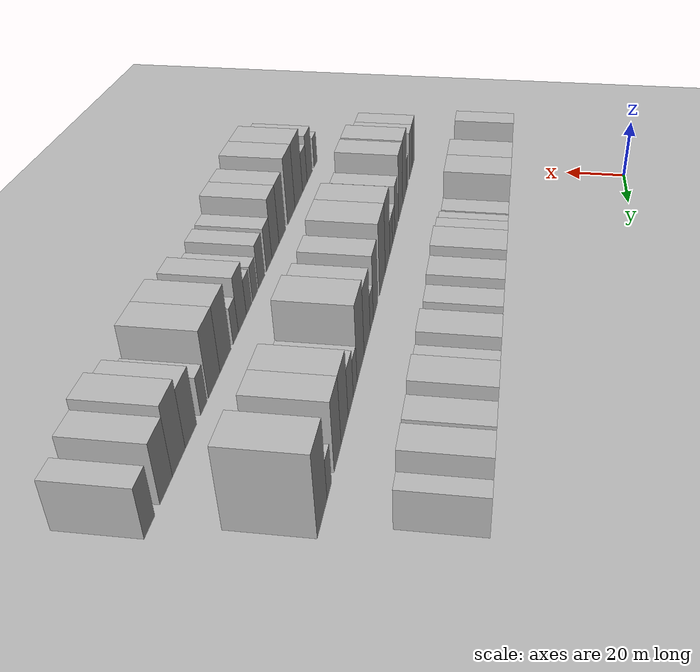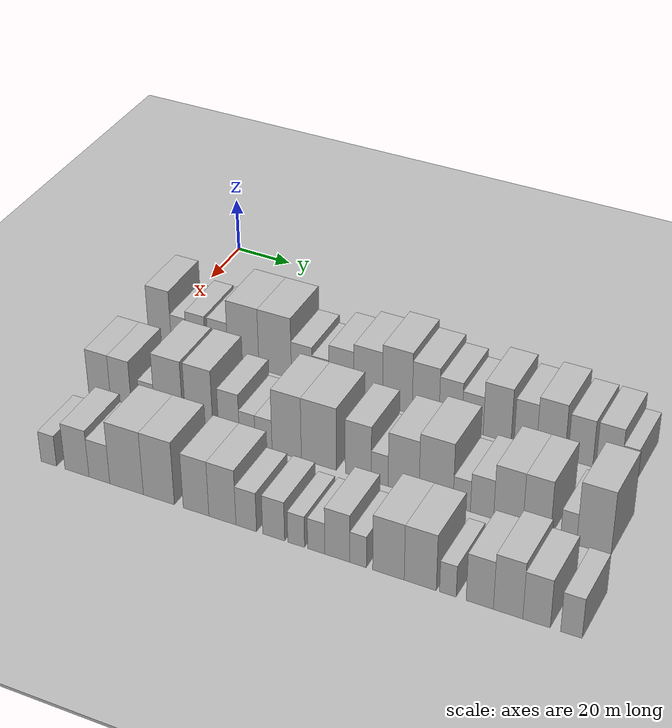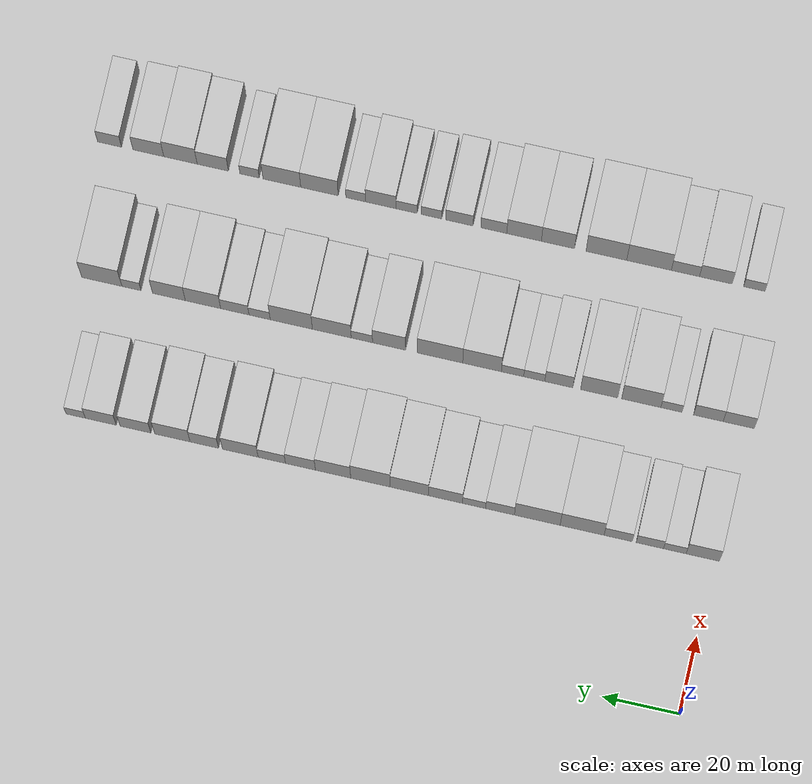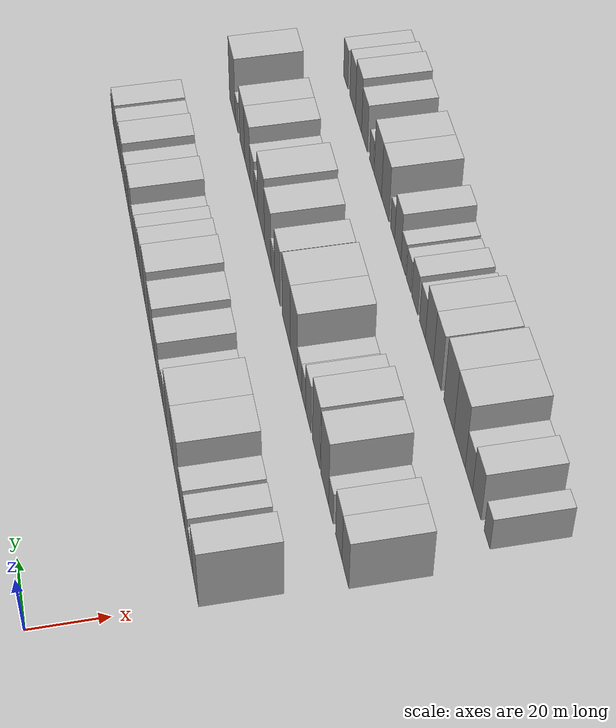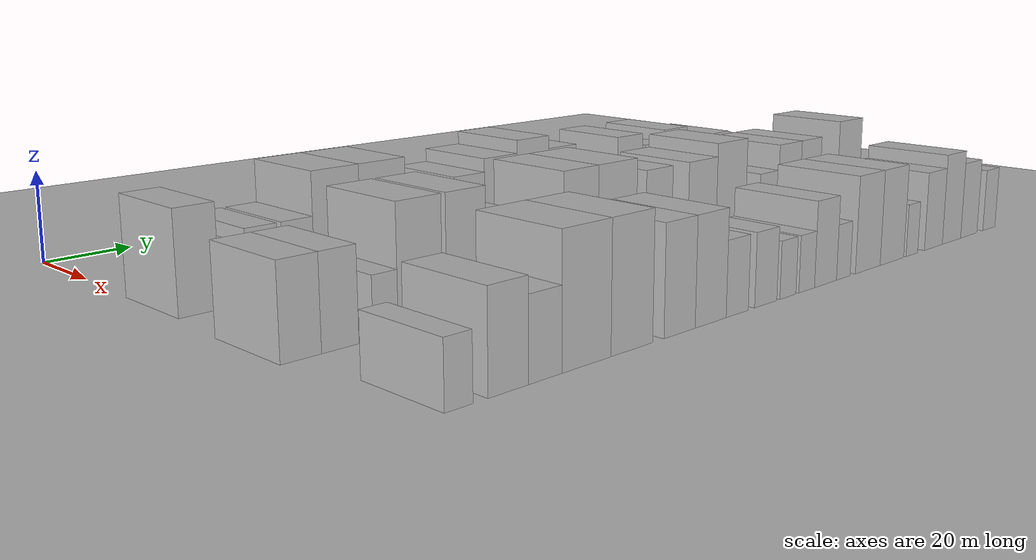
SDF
<sdf version="1.6">
 <world name="default">
  <include><name>ground_plane_1</name><uri>model://HANNAS_ground_plane</uri></include>
  <include>
   <name>ground_plane_2</name>
   <uri>model://HANNAS_ground_plane</uri>
   <pose>100 0 0  0 0 0</pose>
  </include>
  <model name="building_42">
   <static>1</static>
   <pose>50.0000 2.9636 0 0.000000 0.000000 0.000000</pose>
   <link name="link">
    <pose>0 0 10.50 0 0 0</pose>
    <collision name="collision"><geometry><box><size>20.0000 8.5834 21.0000</size></box></geometry></collision>
    <visual name="visual">
     <cast_shadows>0</cast_shadows>
     <geometry><box><size>20.0000 8.5834 21.0000</size></box></geometry>
     <material>
      <script>
       <uri>model://HANNAS_wall/materials/scripts</uri>
       <uri>model://HANNAS_wall/materials/textures</uri>
       <name>vrc/HANNAS_wall</name>
      </script>
     </material>
    </visual>
   </link>
  </model>
  <model name="building_43">
   <static>1</static>
   <pose>50.0000 10.1613 0 0.000000 0.000000 0.000000</pose>
   <link name="link">
    <pose>0 0 6.00 0 0 0</pose>
    <collision name="collision"><geometry><box><size>20.0000 5.8121 12.0000</size></box></geometry></collision>
    <visual name="visual">
     <cast_shadows>0</cast_shadows>
     <geometry><box><size>20.0000 5.8121 12.0000</size></box></geometry>
     <material>
      <script>
       <uri>model://HANNAS_wall/materials/scripts</uri>
       <uri>model://HANNAS_wall/materials/textures</uri>
       <name>vrc/HANNAS_wall</name>
      </script>
     </material>
    </visual>
   </link>
  </model>
  <model name="building_44">
   <static>1</static>
   <pose>50.0000 16.6124 0 0.000000 0.000000 0.000000</pose>
   <link name="link">
    <pose>0 0 7.50 0 0 0</pose>
    <collision name="collision"><geometry><box><size>20.0000 7.0900 15.0000</size></box></geometry></collision>
    <visual name="visual">
     <cast_shadows>0</cast_shadows>
     <geometry><box><size>20.0000 7.0900 15.0000</size></box></geometry>
     <material>
      <script>
       <uri>model://HANNAS_wall/materials/scripts</uri>
       <uri>model://HANNAS_wall/materials/textures</uri>
       <name>vrc/HANNAS_wall</name>
      </script>
     </material>
    </visual>
   </link>
  </model>
  <model name="building_45">
   <static>1</static>
   <pose>50.0000 24.7984 0 0.000000 0.000000 0.000000</pose>
   <link name="link">
    <pose>0 0 7.50 0 0 0</pose>
    <collision name="collision"><geometry><box><size>20.0000 7.2821 15.0000</size></box></geometry></collision>
    <visual name="visual">
     <cast_shadows>0</cast_shadows>
     <geometry><box><size>20.0000 7.2821 15.0000</size></box></geometry>
     <material>
      <script>
       <uri>model://HANNAS_wall/materials/scripts</uri>
       <uri>model://HANNAS_wall/materials/textures</uri>
       <name>vrc/HANNAS_wall</name>
      </script>
     </material>
    </visual>
   </link>
  </model>
  <model name="building_46">
   <static>1</static>
   <pose>50.0000 34.1373 0 0.000000 0.000000 0.000000</pose>
   <link name="link">
    <pose>0 0 12.00 0 0 0</pose>
    <collision name="collision"><geometry><box><size>20.0000 11.3957 24.0000</size></box></geometry></collision>
    <visual name="visual">
     <cast_shadows>0</cast_shadows>
     <geometry><box><size>20.0000 11.3957 24.0000</size></box></geometry>
     <material>
      <script>
       <uri>model://HANNAS_wall/materials/scripts</uri>
       <uri>model://HANNAS_wall/materials/textures</uri>
       <name>vrc/HANNAS_wall</name>
      </script>
     </material>
    </visual>
   </link>
  </model>
  <model name="building_47">
   <static>1</static>
   <pose>50.0000 45.7500 0 0.000000 0.000000 0.000000</pose>
   <link name="link">
    <pose>0 0 12.00 0 0 0</pose>
    <collision name="collision"><geometry><box><size>20.0000 11.8298 24.0000</size></box></geometry></collision>
    <visual name="visual">
     <cast_shadows>0</cast_shadows>
     <geometry><box><size>20.0000 11.8298 24.0000</size></box></geometry>
     <material>
      <script>
       <uri>model://HANNAS_wall/materials/scripts</uri>
       <uri>model://HANNAS_wall/materials/textures</uri>
       <name>vrc/HANNAS_wall</name>
      </script>
     </material>
    </visual>
   </link>
  </model>
  <model name="building_48">
   <static>1</static>
   <pose>50.0000 55.3839 0 0.000000 0.000000 0.000000</pose>
   <link name="link">
    <pose>0 0 7.50 0 0 0</pose>
    <collision name="collision"><geometry><box><size>20.0000 7.4379 15.0000</size></box></geometry></collision>
    <visual name="visual">
     <cast_shadows>0</cast_shadows>
     <geometry><box><size>20.0000 7.4379 15.0000</size></box></geometry>
     <material>
      <script>
       <uri>model://HANNAS_wall/materials/scripts</uri>
       <uri>model://HANNAS_wall/materials/textures</uri>
       <name>vrc/HANNAS_wall</name>
      </script>
     </material>
    </visual>
   </link>
  </model>
  <model name="building_49">
   <static>1</static>
   <pose>50.0000 62.1015 0 0.000000 0.000000 0.000000</pose>
   <link name="link">
    <pose>0 0 6.00 0 0 0</pose>
    <collision name="collision"><geometry><box><size>20.0000 5.9973 12.0000</size></box></geometry></collision>
    <visual name="visual">
     <cast_shadows>0</cast_shadows>
     <geometry><box><size>20.0000 5.9973 12.0000</size></box></geometry>
     <material>
      <script>
       <uri>model://HANNAS_wall/materials/scripts</uri>
       <uri>model://HANNAS_wall/materials/textures</uri>
       <name>vrc/HANNAS_wall</name>
      </script>
     </material>
    </visual>
   </link>
  </model>
  <model name="building_50">
   <static>1</static>
   <pose>50.0000 69.4958 0 0.000000 0.000000 0.000000</pose>
   <link name="link">
    <pose>0 0 9.00 0 0 0</pose>
    <collision name="collision"><geometry><box><size>20.0000 8.7914 18.0000</size></box></geometry></collision>
    <visual name="visual">
     <cast_shadows>0</cast_shadows>
     <geometry><box><size>20.0000 8.7914 18.0000</size></box></geometry>
     <material>
      <script>
       <uri>model://HANNAS_wall/materials/scripts</uri>
       <uri>model://HANNAS_wall/materials/textures</uri>
       <name>vrc/HANNAS_wall</name>
      </script>
     </material>
    </visual>
   </link>
  </model>
  <model name="building_51">
   <static>1</static>
   <pose>50.0000 78.8702 0 0.000000 0.000000 0.000000</pose>
   <link name="link">
    <pose>0 0 10.50 0 0 0</pose>
    <collision name="collision"><geometry><box><size>20.0000 9.9574 21.0000</size></box></geometry></collision>
    <visual name="visual">
     <cast_shadows>0</cast_shadows>
     <geometry><box><size>20.0000 9.9574 21.0000</size></box></geometry>
     <material>
      <script>
       <uri>model://HANNAS_wall/materials/scripts</uri>
       <uri>model://HANNAS_wall/materials/textures</uri>
       <name>vrc/HANNAS_wall</name>
      </script>
     </material>
    </visual>
   </link>
  </model>
  <model name="building_52">
   <static>1</static>
   <pose>50.0000 88.9703 0 0.000000 0.000000 0.000000</pose>
   <link name="link">
    <pose>0 0 12.00 0 0 0</pose>
    <collision name="collision"><geometry><box><size>20.0000 10.2429 24.0000</size></box></geometry></collision>
    <visual name="visual">
     <cast_shadows>0</cast_shadows>
     <geometry><box><size>20.0000 10.2429 24.0000</size></box></geometry>
     <material>
      <script>
       <uri>model://HANNAS_wall/materials/scripts</uri>
       <uri>model://HANNAS_wall/materials/textures</uri>
       <name>vrc/HANNAS_wall</name>
      </script>
     </material>
    </visual>
   </link>
  </model>
  <model name="building_53">
   <static>1</static>
   <pose>50.0000 98.6666 0 0.000000 0.000000 0.000000</pose>
   <link name="link">
    <pose>0 0 10.50 0 0 0</pose>
    <collision name="collision"><geometry><box><size>20.0000 9.1496 21.0000</size></box></geometry></collision>
    <visual name="visual">
     <cast_shadows>0</cast_shadows>
     <geometry><box><size>20.0000 9.1496 21.0000</size></box></geometry>
     <material>
      <script>
       <uri>model://HANNAS_wall/materials/scripts</uri>
       <uri>model://HANNAS_wall/materials/textures</uri>
       <name>vrc/HANNAS_wall</name>
      </script>
     </material>
    </visual>
   </link>
  </model>
  <model name="building_54">
   <static>1</static>
   <pose>50.0000 107.1267 0 0.000000 0.000000 0.000000</pose>
   <link name="link">
    <pose>0 0 9.00 0 0 0</pose>
    <collision name="collision"><geometry><box><size>20.0000 7.7707 18.0000</size></box></geometry></collision>
    <visual name="visual">
     <cast_shadows>0</cast_shadows>
     <geometry><box><size>20.0000 7.7707 18.0000</size></box></geometry>
     <material>
      <script>
       <uri>model://HANNAS_wall/materials/scripts</uri>
       <uri>model://HANNAS_wall/materials/textures</uri>
       <name>vrc/HANNAS_wall</name>
      </script>
     </material>
    </visual>
   </link>
  </model>
  <model name="building_55">
   <static>1</static>
   <pose>50.0000 114.5662 0 0.000000 0.000000 0.000000</pose>
   <link name="link">
    <pose>0 0 7.50 0 0 0</pose>
    <collision name="collision"><geometry><box><size>20.0000 7.1082 15.0000</size></box></geometry></collision>
    <visual name="visual">
     <cast_shadows>0</cast_shadows>
     <geometry><box><size>20.0000 7.1082 15.0000</size></box></geometry>
     <material>
      <script>
       <uri>model://HANNAS_wall/materials/scripts</uri>
       <uri>model://HANNAS_wall/materials/textures</uri>
       <name>vrc/HANNAS_wall</name>
      </script>
     </material>
    </visual>
   </link>
  </model>
  <model name="building_56">
   <static>1</static>
   <pose>50.0000 122.7593 0 0.000000 0.000000 0.000000</pose>
   <link name="link">
    <pose>0 0 10.50 0 0 0</pose>
    <collision name="collision"><geometry><box><size>20.0000 9.2781 21.0000</size></box></geometry></collision>
    <visual name="visual">
     <cast_shadows>0</cast_shadows>
     <geometry><box><size>20.0000 9.2781 21.0000</size></box></geometry>
     <material>
      <script>
       <uri>model://HANNAS_wall/materials/scripts</uri>
       <uri>model://HANNAS_wall/materials/textures</uri>
       <name>vrc/HANNAS_wall</name>
      </script>
     </material>
    </visual>
   </link>
  </model>
  <model name="building_57">
   <static>1</static>
   <pose>50.0000 132.0921 0 0.000000 0.000000 0.000000</pose>
   <link name="link">
    <pose>0 0 9.00 0 0 0</pose>
    <collision name="collision"><geometry><box><size>20.0000 7.3874 18.0000</size></box></geometry></collision>
    <visual name="visual">
     <cast_shadows>0</cast_shadows>
     <geometry><box><size>20.0000 7.3874 18.0000</size></box></geometry>
     <material>
      <script>
       <uri>model://HANNAS_wall/materials/scripts</uri>
       <uri>model://HANNAS_wall/materials/textures</uri>
       <name>vrc/HANNAS_wall</name>
      </script>
     </material>
    </visual>
   </link>
  </model>
  <model name="building_58">
   <static>1</static>
   <pose>50.0000 140.3785 0 0.000000 0.000000 0.000000</pose>
   <link name="link">
    <pose>0 0 10.50 0 0 0</pose>
    <collision name="collision"><geometry><box><size>20.0000 9.1855 21.0000</size></box></geometry></collision>
    <visual name="visual">
     <cast_shadows>0</cast_shadows>
     <geometry><box><size>20.0000 9.1855 21.0000</size></box></geometry>
     <material>
      <script>
       <uri>model://HANNAS_wall/materials/scripts</uri>
       <uri>model://HANNAS_wall/materials/textures</uri>
       <name>vrc/HANNAS_wall</name>
      </script>
     </material>
    </visual>
   </link>
  </model>
  <model name="building_59">
   <static>1</static>
   <pose>50.0000 149.9668 0 0.000000 0.000000 0.000000</pose>
   <link name="link">
    <pose>0 0 9.00 0 0 0</pose>
    <collision name="collision"><geometry><box><size>20.0000 7.9911 18.0000</size></box></geometry></collision>
    <visual name="visual">
     <cast_shadows>0</cast_shadows>
     <geometry><box><size>20.0000 7.9911 18.0000</size></box></geometry>
     <material>
      <script>
       <uri>model://HANNAS_wall/materials/scripts</uri>
       <uri>model://HANNAS_wall/materials/textures</uri>
       <name>vrc/HANNAS_wall</name>
      </script>
     </material>
    </visual>
   </link>
  </model>
  <model name="building_60">
   <static>1</static>
   <pose>50.0000 158.9801 0 0.000000 0.000000 0.000000</pose>
   <link name="link">
    <pose>0 0 9.00 0 0 0</pose>
    <collision name="collision"><geometry><box><size>20.0000 8.0355 18.0000</size></box></geometry></collision>
    <visual name="visual">
     <cast_shadows>0</cast_shadows>
     <geometry><box><size>20.0000 8.0355 18.0000</size></box></geometry>
     <material>
      <script>
       <uri>model://HANNAS_wall/materials/scripts</uri>
       <uri>model://HANNAS_wall/materials/textures</uri>
       <name>vrc/HANNAS_wall</name>
      </script>
     </material>
    </visual>
   </link>
  </model>
  <model name="building_61">
   <static>1</static>
   <pose>50.0000 165.5168 0 0.000000 0.000000 0.000000</pose>
   <link name="link">
    <pose>0 0 6.00 0 0 0</pose>
    <collision name="collision"><geometry><box><size>20.0000 5.0380 12.0000</size></box></geometry></collision>
    <visual name="visual">
     <cast_shadows>0</cast_shadows>
     <geometry><box><size>20.0000 5.0380 12.0000</size></box></geometry>
     <material>
      <script>
       <uri>model://HANNAS_wall/materials/scripts</uri>
       <uri>model://HANNAS_wall/materials/textures</uri>
       <name>vrc/HANNAS_wall</name>
      </script>
     </material>
    </visual>
   </link>
  </model>
  <model name="building_125">
   <static>1</static>
   <pose>85.0000 1.3332 0 0.000000 0.000000 0.000000</pose>
   <link name="link">
    <pose>0 0 9.00 0 0 0</pose>
    <collision name="collision"><geometry><box><size>20.0000 8.0716 18.0000</size></box></geometry></collision>
    <visual name="visual">
     <cast_shadows>0</cast_shadows>
     <geometry><box><size>20.0000 8.0716 18.0000</size></box></geometry>
     <material>
      <script>
       <uri>model://HANNAS_wall/materials/scripts</uri>
       <uri>model://HANNAS_wall/materials/textures</uri>
       <name>vrc/HANNAS_wall</name>
      </script>
     </material>
    </visual>
   </link>
  </model>
  <model name="building_126">
   <static>1</static>
   <pose>85.0000 9.1990 0 0.000000 0.000000 0.000000</pose>
   <link name="link">
    <pose>0 0 9.00 0 0 0</pose>
    <collision name="collision"><geometry><box><size>20.0000 7.6599 18.0000</size></box></geometry></collision>
    <visual name="visual">
     <cast_shadows>0</cast_shadows>
     <geometry><box><size>20.0000 7.6599 18.0000</size></box></geometry>
     <material>
      <script>
       <uri>model://HANNAS_wall/materials/scripts</uri>
       <uri>model://HANNAS_wall/materials/textures</uri>
       <name>vrc/HANNAS_wall</name>
      </script>
     </material>
    </visual>
   </link>
  </model>
  <model name="building_127">
   <static>1</static>
   <pose>85.0000 18.7792 0 0.000000 0.000000 0.000000</pose>
   <link name="link">
    <pose>0 0 6.00 0 0 0</pose>
    <collision name="collision"><geometry><box><size>20.0000 5.5005 12.0000</size></box></geometry></collision>
    <visual name="visual">
     <cast_shadows>0</cast_shadows>
     <geometry><box><size>20.0000 5.5005 12.0000</size></box></geometry>
     <material>
      <script>
       <uri>model://HANNAS_wall/materials/scripts</uri>
       <uri>model://HANNAS_wall/materials/textures</uri>
       <name>vrc/HANNAS_wall</name>
      </script>
     </material>
    </visual>
   </link>
  </model>
  <model name="building_128">
   <static>1</static>
   <pose>85.0000 26.6254 0 0.000000 0.000000 0.000000</pose>
   <link name="link">
    <pose>0 0 12.00 0 0 0</pose>
    <collision name="collision"><geometry><box><size>20.0000 10.1918 24.0000</size></box></geometry></collision>
    <visual name="visual">
     <cast_shadows>0</cast_shadows>
     <geometry><box><size>20.0000 10.1918 24.0000</size></box></geometry>
     <material>
      <script>
       <uri>model://HANNAS_wall/materials/scripts</uri>
       <uri>model://HANNAS_wall/materials/textures</uri>
       <name>vrc/HANNAS_wall</name>
      </script>
     </material>
    </visual>
   </link>
  </model>
  <model name="building_129">
   <static>1</static>
   <pose>85.0000 37.5442 0 0.000000 0.000000 0.000000</pose>
   <link name="link">
    <pose>0 0 12.00 0 0 0</pose>
    <collision name="collision"><geometry><box><size>20.0000 9.6459 24.0000</size></box></geometry></collision>
    <visual name="visual">
     <cast_shadows>0</cast_shadows>
     <geometry><box><size>20.0000 9.6459 24.0000</size></box></geometry>
     <material>
      <script>
       <uri>model://HANNAS_wall/materials/scripts</uri>
       <uri>model://HANNAS_wall/materials/textures</uri>
       <name>vrc/HANNAS_wall</name>
      </script>
     </material>
    </visual>
   </link>
  </model>
  <model name="building_130">
   <static>1</static>
   <pose>85.0000 48.0102 0 0.000000 0.000000 0.000000</pose>
   <link name="link">
    <pose>0 0 9.00 0 0 0</pose>
    <collision name="collision"><geometry><box><size>20.0000 7.2861 18.0000</size></box></geometry></collision>
    <visual name="visual">
     <cast_shadows>0</cast_shadows>
     <geometry><box><size>20.0000 7.2861 18.0000</size></box></geometry>
     <material>
      <script>
       <uri>model://HANNAS_wall/materials/scripts</uri>
       <uri>model://HANNAS_wall/materials/textures</uri>
       <name>vrc/HANNAS_wall</name>
      </script>
     </material>
    </visual>
   </link>
  </model>
  <model name="building_131">
   <static>1</static>
   <pose>85.0000 54.3924 0 0.000000 0.000000 0.000000</pose>
   <link name="link">
    <pose>0 0 6.00 0 0 0</pose>
    <collision name="collision"><geometry><box><size>20.0000 5.4784 12.0000</size></box></geometry></collision>
    <visual name="visual">
     <cast_shadows>0</cast_shadows>
     <geometry><box><size>20.0000 5.4784 12.0000</size></box></geometry>
     <material>
      <script>
       <uri>model://HANNAS_wall/materials/scripts</uri>
       <uri>model://HANNAS_wall/materials/textures</uri>
       <name>vrc/HANNAS_wall</name>
      </script>
     </material>
    </visual>
   </link>
  </model>
  <model name="building_132">
   <static>1</static>
   <pose>85.0000 60.0368 0 0.000000 0.000000 0.000000</pose>
   <link name="link">
    <pose>0 0 6.00 0 0 0</pose>
    <collision name="collision"><geometry><box><size>20.0000 5.8105 12.0000</size></box></geometry></collision>
    <visual name="visual">
     <cast_shadows>0</cast_shadows>
     <geometry><box><size>20.0000 5.8105 12.0000</size></box></geometry>
     <material>
      <script>
       <uri>model://HANNAS_wall/materials/scripts</uri>
       <uri>model://HANNAS_wall/materials/textures</uri>
       <name>vrc/HANNAS_wall</name>
      </script>
     </material>
    </visual>
   </link>
  </model>
  <model name="building_133">
   <static>1</static>
   <pose>85.0000 67.9635 0 0.000000 0.000000 0.000000</pose>
   <link name="link">
    <pose>0 0 12.00 0 0 0</pose>
    <collision name="collision"><geometry><box><size>20.0000 10.0428 24.0000</size></box></geometry></collision>
    <visual name="visual">
     <cast_shadows>0</cast_shadows>
     <geometry><box><size>20.0000 10.0428 24.0000</size></box></geometry>
     <material>
      <script>
       <uri>model://HANNAS_wall/materials/scripts</uri>
       <uri>model://HANNAS_wall/materials/textures</uri>
       <name>vrc/HANNAS_wall</name>
      </script>
     </material>
    </visual>
   </link>
  </model>
  <model name="building_134">
   <static>1</static>
   <pose>85.0000 78.9041 0 0.000000 0.000000 0.000000</pose>
   <link name="link">
    <pose>0 0 12.00 0 0 0</pose>
    <collision name="collision"><geometry><box><size>20.0000 11.8384 24.0000</size></box></geometry></collision>
    <visual name="visual">
     <cast_shadows>0</cast_shadows>
     <geometry><box><size>20.0000 11.8384 24.0000</size></box></geometry>
     <material>
      <script>
       <uri>model://HANNAS_wall/materials/scripts</uri>
       <uri>model://HANNAS_wall/materials/textures</uri>
       <name>vrc/HANNAS_wall</name>
      </script>
     </material>
    </visual>
   </link>
  </model>
  <model name="building_135">
   <static>1</static>
   <pose>85.0000 92.1294 0 0.000000 0.000000 0.000000</pose>
   <link name="link">
    <pose>0 0 10.50 0 0 0</pose>
    <collision name="collision"><geometry><box><size>20.0000 8.6122 21.0000</size></box></geometry></collision>
    <visual name="visual">
     <cast_shadows>0</cast_shadows>
     <geometry><box><size>20.0000 8.6122 21.0000</size></box></geometry>
     <material>
      <script>
       <uri>model://HANNAS_wall/materials/scripts</uri>
       <uri>model://HANNAS_wall/materials/textures</uri>
       <name>vrc/HANNAS_wall</name>
      </script>
     </material>
    </visual>
   </link>
  </model>
  <model name="building_136">
   <static>1</static>
   <pose>85.0000 99.2075 0 0.000000 0.000000 0.000000</pose>
   <link name="link">
    <pose>0 0 6.00 0 0 0</pose>
    <collision name="collision"><geometry><box><size>20.0000 5.5440 12.0000</size></box></geometry></collision>
    <visual name="visual">
     <cast_shadows>0</cast_shadows>
     <geometry><box><size>20.0000 5.5440 12.0000</size></box></geometry>
     <material>
      <script>
       <uri>model://HANNAS_wall/materials/scripts</uri>
       <uri>model://HANNAS_wall/materials/textures</uri>
       <name>vrc/HANNAS_wall</name>
      </script>
     </material>
    </visual>
   </link>
  </model>
  <model name="building_137">
   <static>1</static>
   <pose>85.0000 107.0334 0 0.000000 0.000000 0.000000</pose>
   <link name="link">
    <pose>0 0 10.50 0 0 0</pose>
    <collision name="collision"><geometry><box><size>20.0000 10.1077 21.0000</size></box></geometry></collision>
    <visual name="visual">
     <cast_shadows>0</cast_shadows>
     <geometry><box><size>20.0000 10.1077 21.0000</size></box></geometry>
     <material>
      <script>
       <uri>model://HANNAS_wall/materials/scripts</uri>
       <uri>model://HANNAS_wall/materials/textures</uri>
       <name>vrc/HANNAS_wall</name>
      </script>
     </material>
    </visual>
   </link>
  </model>
  <model name="building_138">
   <static>1</static>
   <pose>85.0000 117.5831 0 0.000000 0.000000 0.000000</pose>
   <link name="link">
    <pose>0 0 12.00 0 0 0</pose>
    <collision name="collision"><geometry><box><size>20.0000 10.9917 24.0000</size></box></geometry></collision>
    <visual name="visual">
     <cast_shadows>0</cast_shadows>
     <geometry><box><size>20.0000 10.9917 24.0000</size></box></geometry>
     <material>
      <script>
       <uri>model://HANNAS_wall/materials/scripts</uri>
       <uri>model://HANNAS_wall/materials/textures</uri>
       <name>vrc/HANNAS_wall</name>
      </script>
     </material>
    </visual>
   </link>
  </model>
  <model name="building_139">
   <static>1</static>
   <pose>85.0000 125.8524 0 0.000000 0.000000 0.000000</pose>
   <link name="link">
    <pose>0 0 6.00 0 0 0</pose>
    <collision name="collision"><geometry><box><size>20.0000 5.5470 12.0000</size></box></geometry></collision>
    <visual name="visual">
     <cast_shadows>0</cast_shadows>
     <geometry><box><size>20.0000 5.5470 12.0000</size></box></geometry>
     <material>
      <script>
       <uri>model://HANNAS_wall/materials/scripts</uri>
       <uri>model://HANNAS_wall/materials/textures</uri>
       <name>vrc/HANNAS_wall</name>
      </script>
     </material>
    </visual>
   </link>
  </model>
  <model name="building_140">
   <static>1</static>
   <pose>85.0000 132.3076 0 0.000000 0.000000 0.000000</pose>
   <link name="link">
    <pose>0 0 7.50 0 0 0</pose>
    <collision name="collision"><geometry><box><size>20.0000 7.3633 15.0000</size></box></geometry></collision>
    <visual name="visual">
     <cast_shadows>0</cast_shadows>
     <geometry><box><size>20.0000 7.3633 15.0000</size></box></geometry>
     <material>
      <script>
       <uri>model://HANNAS_wall/materials/scripts</uri>
       <uri>model://HANNAS_wall/materials/textures</uri>
       <name>vrc/HANNAS_wall</name>
      </script>
     </material>
    </visual>
   </link>
  </model>
  <model name="building_141">
   <static>1</static>
   <pose>85.0000 140.5941 0 0.000000 0.000000 0.000000</pose>
   <link name="link">
    <pose>0 0 10.50 0 0 0</pose>
    <collision name="collision"><geometry><box><size>20.0000 9.2098 21.0000</size></box></geometry></collision>
    <visual name="visual">
     <cast_shadows>0</cast_shadows>
     <geometry><box><size>20.0000 9.2098 21.0000</size></box></geometry>
     <material>
      <script>
       <uri>model://HANNAS_wall/materials/scripts</uri>
       <uri>model://HANNAS_wall/materials/textures</uri>
       <name>vrc/HANNAS_wall</name>
      </script>
     </material>
    </visual>
   </link>
  </model>
  <model name="building_142">
   <static>1</static>
   <pose>85.0000 149.4820 0 0.000000 0.000000 0.000000</pose>
   <link name="link">
    <pose>0 0 10.50 0 0 0</pose>
    <collision name="collision"><geometry><box><size>20.0000 8.5661 21.0000</size></box></geometry></collision>
    <visual name="visual">
     <cast_shadows>0</cast_shadows>
     <geometry><box><size>20.0000 8.5661 21.0000</size></box></geometry>
     <material>
      <script>
       <uri>model://HANNAS_wall/materials/scripts</uri>
       <uri>model://HANNAS_wall/materials/textures</uri>
       <name>vrc/HANNAS_wall</name>
      </script>
     </material>
    </visual>
   </link>
  </model>
  <model name="building_143">
   <static>1</static>
   <pose>85.0000 159.2591 0 0.000000 0.000000 0.000000</pose>
   <link name="link">
    <pose>0 0 6.00 0 0 0</pose>
    <collision name="collision"><geometry><box><size>20.0000 4.9880 12.0000</size></box></geometry></collision>
    <visual name="visual">
     <cast_shadows>0</cast_shadows>
     <geometry><box><size>20.0000 4.9880 12.0000</size></box></geometry>
     <material>
      <script>
       <uri>model://HANNAS_wall/materials/scripts</uri>
       <uri>model://HANNAS_wall/materials/textures</uri>
       <name>vrc/HANNAS_wall</name>
      </script>
     </material>
    </visual>
   </link>
  </model>
  <model name="building_144">
   <static>1</static>
   <pose>85.0000 166.9899 0 0.000000 0.000000 0.000000</pose>
   <link name="link">
    <pose>0 0 12.00 0 0 0</pose>
    <collision name="collision"><geometry><box><size>20.0000 10.4736 24.0000</size></box></geometry></collision>
    <visual name="visual">
     <cast_shadows>0</cast_shadows>
     <geometry><box><size>20.0000 10.4736 24.0000</size></box></geometry>
     <material>
      <script>
       <uri>model://HANNAS_wall/materials/scripts</uri>
       <uri>model://HANNAS_wall/materials/textures</uri>
       <name>vrc/HANNAS_wall</name>
      </script>
     </material>
    </visual>
   </link>
  </model>
  <model name="building_207">
   <static>1</static>
   <pose>120.0000 4.9398 0 0.000000 0.000000 0.000000</pose>
   <link name="link">
    <pose>0 0 6.00 0 0 0</pose>
    <collision name="collision"><geometry><box><size>20.0000 5.5673 12.0000</size></box></geometry></collision>
    <visual name="visual">
     <cast_shadows>0</cast_shadows>
     <geometry><box><size>20.0000 5.5673 12.0000</size></box></geometry>
     <material>
      <script>
       <uri>model://HANNAS_wall/materials/scripts</uri>
       <uri>model://HANNAS_wall/materials/textures</uri>
       <name>vrc/HANNAS_wall</name>
      </script>
     </material>
    </visual>
   </link>
  </model>
  <model name="building_208">
   <static>1</static>
   <pose>120.0000 14.9741 0 0.000000 0.000000 0.000000</pose>
   <link name="link">
    <pose>0 0 9.00 0 0 0</pose>
    <collision name="collision"><geometry><box><size>20.0000 8.5013 18.0000</size></box></geometry></collision>
    <visual name="visual">
     <cast_shadows>0</cast_shadows>
     <geometry><box><size>20.0000 8.5013 18.0000</size></box></geometry>
     <material>
      <script>
       <uri>model://HANNAS_wall/materials/scripts</uri>
       <uri>model://HANNAS_wall/materials/textures</uri>
       <name>vrc/HANNAS_wall</name>
      </script>
     </material>
    </visual>
   </link>
  </model>
  <model name="building_209">
   <static>1</static>
   <pose>120.0000 22.8759 0 0.000000 0.000000 0.000000</pose>
   <link name="link">
    <pose>0 0 7.50 0 0 0</pose>
    <collision name="collision"><geometry><box><size>20.0000 7.3023 15.0000</size></box></geometry></collision>
    <visual name="visual">
     <cast_shadows>0</cast_shadows>
     <geometry><box><size>20.0000 7.3023 15.0000</size></box></geometry>
     <material>
      <script>
       <uri>model://HANNAS_wall/materials/scripts</uri>
       <uri>model://HANNAS_wall/materials/textures</uri>
       <name>vrc/HANNAS_wall</name>
      </script>
     </material>
    </visual>
   </link>
  </model>
  <model name="building_210">
   <static>1</static>
   <pose>120.0000 32.3416 0 0.000000 0.000000 0.000000</pose>
   <link name="link">
    <pose>0 0 12.00 0 0 0</pose>
    <collision name="collision"><geometry><box><size>20.0000 11.6292 24.0000</size></box></geometry></collision>
    <visual name="visual">
     <cast_shadows>0</cast_shadows>
     <geometry><box><size>20.0000 11.6292 24.0000</size></box></geometry>
     <material>
      <script>
       <uri>model://HANNAS_wall/materials/scripts</uri>
       <uri>model://HANNAS_wall/materials/textures</uri>
       <name>vrc/HANNAS_wall</name>
      </script>
     </material>
    </visual>
   </link>
  </model>
  <model name="building_211">
   <static>1</static>
   <pose>120.0000 43.4573 0 0.000000 0.000000 0.000000</pose>
   <link name="link">
    <pose>0 0 12.00 0 0 0</pose>
    <collision name="collision"><geometry><box><size>20.0000 10.6022 24.0000</size></box></geometry></collision>
    <visual name="visual">
     <cast_shadows>0</cast_shadows>
     <geometry><box><size>20.0000 10.6022 24.0000</size></box></geometry>
     <material>
      <script>
       <uri>model://HANNAS_wall/materials/scripts</uri>
       <uri>model://HANNAS_wall/materials/textures</uri>
       <name>vrc/HANNAS_wall</name>
      </script>
     </material>
    </visual>
   </link>
  </model>
  <model name="building_212">
   <static>1</static>
   <pose>120.0000 56.0753 0 0.000000 0.000000 0.000000</pose>
   <link name="link">
    <pose>0 0 10.50 0 0 0</pose>
    <collision name="collision"><geometry><box><size>20.0000 8.6337 21.0000</size></box></geometry></collision>
    <visual name="visual">
     <cast_shadows>0</cast_shadows>
     <geometry><box><size>20.0000 8.6337 21.0000</size></box></geometry>
     <material>
      <script>
       <uri>model://HANNAS_wall/materials/scripts</uri>
       <uri>model://HANNAS_wall/materials/textures</uri>
       <name>vrc/HANNAS_wall</name>
      </script>
     </material>
    </visual>
   </link>
  </model>
  <model name="building_213">
   <static>1</static>
   <pose>120.0000 64.9018 0 0.000000 0.000000 0.000000</pose>
   <link name="link">
    <pose>0 0 10.50 0 0 0</pose>
    <collision name="collision"><geometry><box><size>20.0000 9.0193 21.0000</size></box></geometry></collision>
    <visual name="visual">
     <cast_shadows>0</cast_shadows>
     <geometry><box><size>20.0000 9.0193 21.0000</size></box></geometry>
     <material>
      <script>
       <uri>model://HANNAS_wall/materials/scripts</uri>
       <uri>model://HANNAS_wall/materials/textures</uri>
       <name>vrc/HANNAS_wall</name>
      </script>
     </material>
    </visual>
   </link>
  </model>
  <model name="building_214">
   <static>1</static>
   <pose>120.0000 72.8053 0 0.000000 0.000000 0.000000</pose>
   <link name="link">
    <pose>0 0 7.50 0 0 0</pose>
    <collision name="collision"><geometry><box><size>20.0000 6.7878 15.0000</size></box></geometry></collision>
    <visual name="visual">
     <cast_shadows>0</cast_shadows>
     <geometry><box><size>20.0000 6.7878 15.0000</size></box></geometry>
     <material>
      <script>
       <uri>model://HANNAS_wall/materials/scripts</uri>
       <uri>model://HANNAS_wall/materials/textures</uri>
       <name>vrc/HANNAS_wall</name>
      </script>
     </material>
    </visual>
   </link>
  </model>
  <model name="building_215">
   <static>1</static>
   <pose>120.0000 81.7858 0 0.000000 0.000000 0.000000</pose>
   <link name="link">
    <pose>0 0 7.50 0 0 0</pose>
    <collision name="collision"><geometry><box><size>20.0000 7.1733 15.0000</size></box></geometry></collision>
    <visual name="visual">
     <cast_shadows>0</cast_shadows>
     <geometry><box><size>20.0000 7.1733 15.0000</size></box></geometry>
     <material>
      <script>
       <uri>model://HANNAS_wall/materials/scripts</uri>
       <uri>model://HANNAS_wall/materials/textures</uri>
       <name>vrc/HANNAS_wall</name>
      </script>
     </material>
    </visual>
   </link>
  </model>
  <model name="building_216">
   <static>1</static>
   <pose>120.0000 89.0845 0 0.000000 0.000000 0.000000</pose>
   <link name="link">
    <pose>0 0 6.00 0 0 0</pose>
    <collision name="collision"><geometry><box><size>20.0000 5.4241 12.0000</size></box></geometry></collision>
    <visual name="visual">
     <cast_shadows>0</cast_shadows>
     <geometry><box><size>20.0000 5.4241 12.0000</size></box></geometry>
     <material>
      <script>
       <uri>model://HANNAS_wall/materials/scripts</uri>
       <uri>model://HANNAS_wall/materials/textures</uri>
       <name>vrc/HANNAS_wall</name>
      </script>
     </material>
    </visual>
   </link>
  </model>
  <model name="building_217">
   <static>1</static>
   <pose>120.0000 95.5336 0 0.000000 0.000000 0.000000</pose>
   <link name="link">
    <pose>0 0 6.00 0 0 0</pose>
    <collision name="collision"><geometry><box><size>20.0000 5.4741 12.0000</size></box></geometry></collision>
    <visual name="visual">
     <cast_shadows>0</cast_shadows>
     <geometry><box><size>20.0000 5.4741 12.0000</size></box></geometry>
     <material>
      <script>
       <uri>model://HANNAS_wall/materials/scripts</uri>
       <uri>model://HANNAS_wall/materials/textures</uri>
       <name>vrc/HANNAS_wall</name>
      </script>
     </material>
    </visual>
   </link>
  </model>
  <model name="building_218">
   <static>1</static>
   <pose>120.0000 102.2632 0 0.000000 0.000000 0.000000</pose>
   <link name="link">
    <pose>0 0 9.00 0 0 0</pose>
    <collision name="collision"><geometry><box><size>20.0000 7.9851 18.0000</size></box></geometry></collision>
    <visual name="visual">
     <cast_shadows>0</cast_shadows>
     <geometry><box><size>20.0000 7.9851 18.0000</size></box></geometry>
     <material>
      <script>
       <uri>model://HANNAS_wall/materials/scripts</uri>
       <uri>model://HANNAS_wall/materials/textures</uri>
       <name>vrc/HANNAS_wall</name>
      </script>
     </material>
    </visual>
   </link>
  </model>
  <model name="building_219">
   <static>1</static>
   <pose>120.0000 108.8326 0 0.000000 0.000000 0.000000</pose>
   <link name="link">
    <pose>0 0 6.00 0 0 0</pose>
    <collision name="collision"><geometry><box><size>20.0000 5.1535 12.0000</size></box></geometry></collision>
    <visual name="visual">
     <cast_shadows>0</cast_shadows>
     <geometry><box><size>20.0000 5.1535 12.0000</size></box></geometry>
     <material>
      <script>
       <uri>model://HANNAS_wall/materials/scripts</uri>
       <uri>model://HANNAS_wall/materials/textures</uri>
       <name>vrc/HANNAS_wall</name>
      </script>
     </material>
    </visual>
   </link>
  </model>
  <model name="building_220">
   <static>1</static>
   <pose>120.0000 118.3083 0 0.000000 0.000000 0.000000</pose>
   <link name="link">
    <pose>0 0 10.50 0 0 0</pose>
    <collision name="collision"><geometry><box><size>20.0000 9.7981 21.0000</size></box></geometry></collision>
    <visual name="visual">
     <cast_shadows>0</cast_shadows>
     <geometry><box><size>20.0000 9.7981 21.0000</size></box></geometry>
     <material>
      <script>
       <uri>model://HANNAS_wall/materials/scripts</uri>
       <uri>model://HANNAS_wall/materials/textures</uri>
       <name>vrc/HANNAS_wall</name>
      </script>
     </material>
    </visual>
   </link>
  </model>
  <model name="building_221">
   <static>1</static>
   <pose>120.0000 128.1372 0 0.000000 0.000000 0.000000</pose>
   <link name="link">
    <pose>0 0 10.50 0 0 0</pose>
    <collision name="collision"><geometry><box><size>20.0000 9.8597 21.0000</size></box></geometry></collision>
    <visual name="visual">
     <cast_shadows>0</cast_shadows>
     <geometry><box><size>20.0000 9.8597 21.0000</size></box></geometry>
     <material>
      <script>
       <uri>model://HANNAS_wall/materials/scripts</uri>
       <uri>model://HANNAS_wall/materials/textures</uri>
       <name>vrc/HANNAS_wall</name>
      </script>
     </material>
    </visual>
   </link>
  </model>
  <model name="building_222">
   <static>1</static>
   <pose>120.0000 136.5929 0 0.000000 0.000000 0.000000</pose>
   <link name="link">
    <pose>0 0 6.00 0 0 0</pose>
    <collision name="collision"><geometry><box><size>20.0000 5.0516 12.0000</size></box></geometry></collision>
    <visual name="visual">
     <cast_shadows>0</cast_shadows>
     <geometry><box><size>20.0000 5.0516 12.0000</size></box></geometry>
     <material>
      <script>
       <uri>model://HANNAS_wall/materials/scripts</uri>
       <uri>model://HANNAS_wall/materials/textures</uri>
       <name>vrc/HANNAS_wall</name>
      </script>
     </material>
    </visual>
   </link>
  </model>
  <model name="building_223">
   <static>1</static>
   <pose>120.0000 146.2117 0 0.000000 0.000000 0.000000</pose>
   <link name="link">
    <pose>0 0 9.00 0 0 0</pose>
    <collision name="collision"><geometry><box><size>20.0000 8.1861 18.0000</size></box></geometry></collision>
    <visual name="visual">
     <cast_shadows>0</cast_shadows>
     <geometry><box><size>20.0000 8.1861 18.0000</size></box></geometry>
     <material>
      <script>
       <uri>model://HANNAS_wall/materials/scripts</uri>
       <uri>model://HANNAS_wall/materials/textures</uri>
       <name>vrc/HANNAS_wall</name>
      </script>
     </material>
    </visual>
   </link>
  </model>
  <model name="building_224">
   <static>1</static>
   <pose>120.0000 154.6734 0 0.000000 0.000000 0.000000</pose>
   <link name="link">
    <pose>0 0 10.50 0 0 0</pose>
    <collision name="collision"><geometry><box><size>20.0000 8.7373 21.0000</size></box></geometry></collision>
    <visual name="visual">
     <cast_shadows>0</cast_shadows>
     <geometry><box><size>20.0000 8.7373 21.0000</size></box></geometry>
     <material>
      <script>
       <uri>model://HANNAS_wall/materials/scripts</uri>
       <uri>model://HANNAS_wall/materials/textures</uri>
       <name>vrc/HANNAS_wall</name>
      </script>
     </material>
    </visual>
   </link>
  </model>
  <model name="building_225">
   <static>1</static>
   <pose>120.0000 163.0745 0 0.000000 0.000000 0.000000</pose>
   <link name="link">
    <pose>0 0 9.00 0 0 0</pose>
    <collision name="collision"><geometry><box><size>20.0000 8.0649 18.0000</size></box></geometry></collision>
    <visual name="visual">
     <cast_shadows>0</cast_shadows>
     <geometry><box><size>20.0000 8.0649 18.0000</size></box></geometry>
     <material>
      <script>
       <uri>model://HANNAS_wall/materials/scripts</uri>
       <uri>model://HANNAS_wall/materials/textures</uri>
       <name>vrc/HANNAS_wall</name>
      </script>
     </material>
    </visual>
   </link>
  </model>
  <model name="building_226">
   <static>1</static>
   <pose>120.0000 173.2401 0 0.000000 0.000000 0.000000</pose>
   <link name="link">
    <pose>0 0 7.50 0 0 0</pose>
    <collision name="collision"><geometry><box><size>20.0000 6.2662 15.0000</size></box></geometry></collision>
    <visual name="visual">
     <cast_shadows>0</cast_shadows>
     <geometry><box><size>20.0000 6.2662 15.0000</size></box></geometry>
     <material>
      <script>
       <uri>model://HANNAS_wall/materials/scripts</uri>
       <uri>model://HANNAS_wall/materials/textures</uri>
       <name>vrc/HANNAS_wall</name>
      </script>
     </material>
    </visual>
   </link>
  </model>
 </world>
</sdf>
